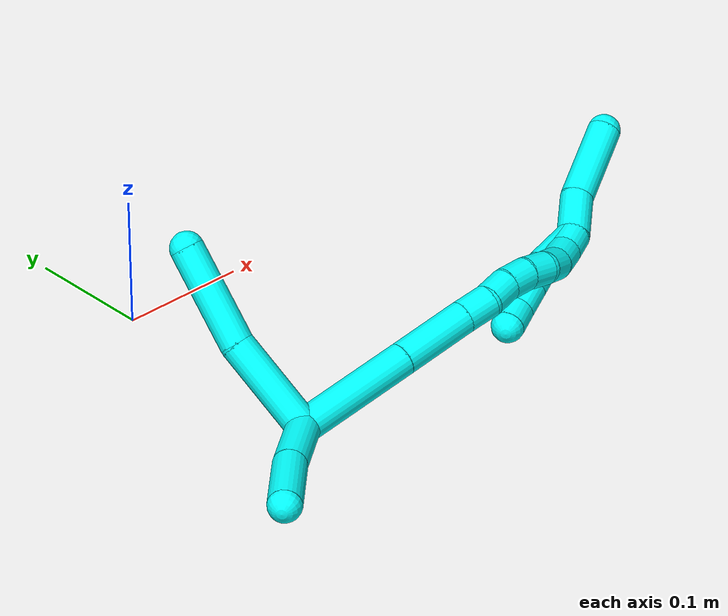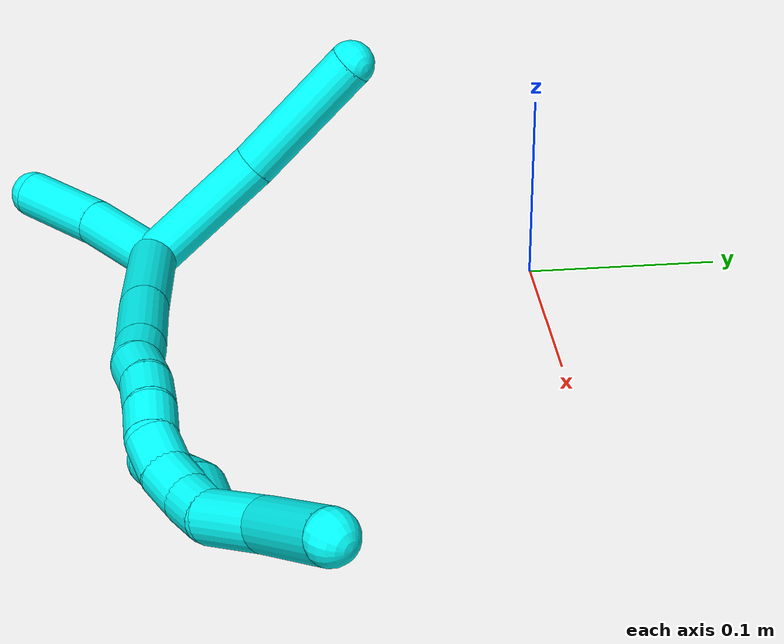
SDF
<sdf version="1.7">
 <world name="default">
  <model name="photoneo_s_sensor">
   <static>1</static>
   <pose>0 0 2 1.57079 1.57079 3.14159</pose>
   <link name="link">
    <inertial><mass>0.1</mass></inertial>
    <sensor name="sensor" type="depth">
     <update_rate>30</update_rate>
     <camera>
      <horizontal_fov>1.22</horizontal_fov>
      <image><width>1920</width><height>1200</height><format>B8G8R8</format></image>
      <clip><near>0.1</near><far>4</far></clip>
      <depth_camera><output>points</output></depth_camera>
     </camera>
     <plugin name="camera_plugin" filename="libgazebo_ros_depth_camera.so">
      <baseline>0.2</baseline>
      <alwaysOn>1</alwaysOn>
      <updateRate>0.0</updateRate>
      <cameraName>camera_ir</cameraName>
      <imageTopicName>/camera/color/image_raw</imageTopicName>
      <cameraInfoTopicName>/camera/color/camera_info</cameraInfoTopicName>
      <depthImageTopicName>/camera/depth/image_raw</depthImageTopicName>
      <depthImageCameraInfoTopicName>/camera/depth/camera_info</depthImageCameraInfoTopicName>
      <pointCloudTopicName>/camera/depth/points</pointCloudTopicName>
      <frameName>fr_optical</frameName>
      <pointCloudCutoff>0.1</pointCloudCutoff>
      <pointCloudCutoffMax>2.0</pointCloudCutoffMax>
      <distortionK1>0</distortionK1>
      <distortionK2>0</distortionK2>
      <distortionK3>0</distortionK3>
      <distortionT1>0</distortionT1>
      <distortionT2>0</distortionT2>
      <CxPrime>0</CxPrime>
      <Cx>0</Cx>
      <Cy>0</Cy>
      <focalLength>0</focalLength>
      <hackBaseline>0</hackBaseline>
     </plugin>
    </sensor>
   </link>
  </model>
  <model name="bin">
   <static>1</static>
   <link name="bottom">
    <collision name="collision-bottom">
     <pose>0 0 -0.01 0 -0 0</pose>
     <geometry><box><size>0.8 0.6 0.02</size></box></geometry>
     <surface>
      <friction><ode><mu>100</mu><mu2>100</mu2></ode></friction>
      <contact><collide_bitmask>65535</collide_bitmask></contact>
     </surface>
    </collision>
   </link>
   <link name="west_wall">
    <collision name="collision-west_wall">
     <pose>-0.41 0 0.1 0 -0 0</pose>
     <geometry><box><size>0.02 0.6 0.2</size></box></geometry>
     <surface>
      <friction><ode><mu>100</mu><mu2>100</mu2></ode></friction>
      <contact><collide_bitmask>65535</collide_bitmask></contact>
     </surface>
    </collision>
   </link>
   <link name="east_wall">
    <collision name="collision-east_wall">
     <pose>0.41 0 0.1 0 -0 0</pose>
     <geometry><box><size>0.02 0.6 0.2</size></box></geometry>
     <surface>
      <friction><ode><mu>100</mu><mu2>100</mu2></ode></friction>
      <contact><collide_bitmask>65535</collide_bitmask></contact>
     </surface>
    </collision>
   </link>
   <link name="south_wall">
    <collision name="collision-south_wall">
     <pose>0 -0.31 0.1 0 -0 0</pose>
     <geometry><box><size>0.8 0.02 0.2</size></box></geometry>
     <surface>
      <friction><ode><mu>100</mu><mu2>100</mu2></ode></friction>
      <contact><collide_bitmask>65535</collide_bitmask></contact>
     </surface>
    </collision>
   </link>
   <link name="north_wall">
    <collision name="collision-north_wall">
     <pose>0 0.31 0.1 0 -0 0</pose>
     <geometry><box><size>0.8 0.02 0.2</size></box></geometry>
     <surface>
      <friction><ode><mu>100</mu><mu2>100</mu2></ode></friction>
      <contact><collide_bitmask>65535</collide_bitmask></contact>
     </surface>
    </collision>
   </link>
  </model>
  <model name="3">
   <static>0</static>
   <link name="3">
    <collision name="collision-cylinder-e_1_2_8">
     <pose>-0.032833 0.011971 -0.012075 -2.36052 -1.09294 1.9516</pose>
     <geometry><cylinder><radius>0.0125</radius><length>0.073949</length></cylinder></geometry>
     <surface>
      <friction><ode><mu>1.16</mu><mu2>1.16</mu2><slip1>0</slip1><slip2>0</slip2></ode></friction>
      <contact><ode><kp>1e+06</kp><kd>1</kd><max_vel>0</max_vel><min_depth>0.001</min_depth></ode></contact>
     </surface>
    </collision>
    <visual name="visual-cylinder-e_1_2_8">
     <pose>-0.032833 0.011971 -0.012075 -2.36052 -1.09294 1.9516</pose>
     <geometry><cylinder><radius>0.0125</radius><length>0.073949</length></cylinder></geometry>
     <material><ambient>0.003922 1 0.996078 1</ambient></material>
    </visual>
    <collision name="collision-cylinder-e_2_8_6">
     <pose>-0.095449 0.042005 -0.039403 -2.27202 -0.899882 1.60997</pose>
     <geometry><cylinder><radius>0.0125</radius><length>0.076051</length></cylinder></geometry>
     <surface>
      <friction><ode><mu>1.16</mu><mu2>1.16</mu2><slip1>0</slip1><slip2>0</slip2></ode></friction>
      <contact><ode><kp>1e+06</kp><kd>1</kd><max_vel>0</max_vel><min_depth>0.001</min_depth></ode></contact>
     </surface>
    </collision>
    <visual name="visual-cylinder-e_2_8_6">
     <pose>-0.095449 0.042005 -0.039403 -2.27202 -0.899882 1.60997</pose>
     <geometry><cylinder><radius>0.0125</radius><length>0.076051</length></cylinder></geometry>
     <material><ambient>0.003922 1 0.996078 1</ambient></material>
    </visual>
    <collision name="collision-cylinder-e_1_2_9">
     <pose>-0.000627 -1.3e-05 0.024934 0.000512 -0.025158 -6e-06</pose>
     <geometry><cylinder><radius>0.0125</radius><length>0.049883</length></cylinder></geometry>
     <surface>
      <friction><ode><mu>1.16</mu><mu2>1.16</mu2><slip1>0</slip1><slip2>0</slip2></ode></friction>
      <contact><ode><kp>1e+06</kp><kd>1</kd><max_vel>0</max_vel><min_depth>0.001</min_depth></ode></contact>
     </surface>
    </collision>
    <visual name="visual-cylinder-e_1_2_9">
     <pose>-0.000627 -1.3e-05 0.024934 0.000512 -0.025158 -6e-06</pose>
     <geometry><cylinder><radius>0.0125</radius><length>0.049883</length></cylinder></geometry>
     <material><ambient>0.003922 1 0.996078 1</ambient></material>
    </visual>
    <collision name="collision-cylinder-e_2_9_5">
     <pose>0.001045 0.000739 0.074808 -0.030654 0.091894 -0.00141</pose>
     <geometry><cylinder><radius>0.0125</radius><length>0.050117</length></cylinder></geometry>
     <surface>
      <friction><ode><mu>1.16</mu><mu2>1.16</mu2><slip1>0</slip1><slip2>0</slip2></ode></friction>
      <contact><ode><kp>1e+06</kp><kd>1</kd><max_vel>0</max_vel><min_depth>0.001</min_depth></ode></contact>
     </surface>
    </collision>
    <visual name="visual-cylinder-e_2_9_5">
     <pose>0.001045 0.000739 0.074808 -0.030654 0.091894 -0.00141</pose>
     <geometry><cylinder><radius>0.0125</radius><length>0.050117</length></cylinder></geometry>
     <material><ambient>0.003922 1 0.996078 1</ambient></material>
    </visual>
    <collision name="collision-cylinder-e_1_2_10">
     <pose>0.023335 0.021348 -0.033172 -2.56976 0.534187 -1.49916</pose>
     <geometry><cylinder><radius>0.0125</radius><length>0.091666</length></cylinder></geometry>
     <surface>
      <friction><ode><mu>1.16</mu><mu2>1.16</mu2><slip1>0</slip1><slip2>0</slip2></ode></friction>
      <contact><ode><kp>1e+06</kp><kd>1</kd><max_vel>0</max_vel><min_depth>0.001</min_depth></ode></contact>
     </surface>
    </collision>
    <visual name="visual-cylinder-e_1_2_10">
     <pose>0.023335 0.021348 -0.033172 -2.56976 0.534187 -1.49916</pose>
     <geometry><cylinder><radius>0.0125</radius><length>0.091666</length></cylinder></geometry>
     <material><ambient>0.003922 1 0.996078 1</ambient></material>
    </visual>
    <collision name="collision-cylinder-e_2_10_11">
     <pose>0.061356 0.055634 -0.088078 -2.60465 0.526031 -1.54927</pose>
     <geometry><cylinder><radius>0.0125</radius><length>0.058495</length></cylinder></geometry>
     <surface>
      <friction><ode><mu>1.16</mu><mu2>1.16</mu2><slip1>0</slip1><slip2>0</slip2></ode></friction>
      <contact><ode><kp>1e+06</kp><kd>1</kd><max_vel>0</max_vel><min_depth>0.001</min_depth></ode></contact>
     </surface>
    </collision>
    <visual name="visual-cylinder-e_2_10_11">
     <pose>0.061356 0.055634 -0.088078 -2.60465 0.526031 -1.54927</pose>
     <geometry><cylinder><radius>0.0125</radius><length>0.058495</length></cylinder></geometry>
     <material><ambient>0.003922 1 0.996078 1</ambient></material>
    </visual>
    <collision name="collision-cylinder-e_3_11_12">
     <pose>0.082526 0.074082 -0.118631 -2.58311 0.557591 -1.56911</pose>
     <geometry><cylinder><radius>0.0125</radius><length>0.02451</length></cylinder></geometry>
     <surface>
      <friction><ode><mu>1.16</mu><mu2>1.16</mu2><slip1>0</slip1><slip2>0</slip2></ode></friction>
      <contact><ode><kp>1e+06</kp><kd>1</kd><max_vel>0</max_vel><min_depth>0.001</min_depth></ode></contact>
     </surface>
    </collision>
    <visual name="visual-cylinder-e_3_11_12">
     <pose>0.082526 0.074082 -0.118631 -2.58311 0.557591 -1.56911</pose>
     <geometry><cylinder><radius>0.0125</radius><length>0.02451</length></cylinder></geometry>
     <material><ambient>0.003922 1 0.996078 1</ambient></material>
    </visual>
    <collision name="collision-cylinder-e_4_12_13">
     <pose>0.093054 0.083027 -0.137146 -2.80116 0.374526 -1.66815</pose>
     <geometry><cylinder><radius>0.0125</radius><length>0.022106</length></cylinder></geometry>
     <surface>
      <friction><ode><mu>1.16</mu><mu2>1.16</mu2><slip1>0</slip1><slip2>0</slip2></ode></friction>
      <contact><ode><kp>1e+06</kp><kd>1</kd><max_vel>0</max_vel><min_depth>0.001</min_depth></ode></contact>
     </surface>
    </collision>
    <visual name="visual-cylinder-e_4_12_13">
     <pose>0.093054 0.083027 -0.137146 -2.80116 0.374526 -1.66815</pose>
     <geometry><cylinder><radius>0.0125</radius><length>0.022106</length></cylinder></geometry>
     <material><ambient>0.003922 1 0.996078 1</ambient></material>
    </visual>
    <collision name="collision-cylinder-e_5_13_14">
     <pose>0.10281 0.088907 -0.155749 -2.87364 0.553944 -2.25612</pose>
     <geometry><cylinder><radius>0.0125</radius><length>0.02172</length></cylinder></geometry>
     <surface>
      <friction><ode><mu>1.16</mu><mu2>1.16</mu2><slip1>0</slip1><slip2>0</slip2></ode></friction>
      <contact><ode><kp>1e+06</kp><kd>1</kd><max_vel>0</max_vel><min_depth>0.001</min_depth></ode></contact>
     </surface>
    </collision>
    <visual name="visual-cylinder-e_5_13_14">
     <pose>0.10281 0.088907 -0.155749 -2.87364 0.553944 -2.25612</pose>
     <geometry><cylinder><radius>0.0125</radius><length>0.02172</length></cylinder></geometry>
     <material><ambient>0.003922 1 0.996078 1</ambient></material>
    </visual>
    <collision name="collision-cylinder-e_6_14_15">
     <pose>0.114716 0.092304 -0.172631 -3.02282 0.65672 -2.79604</pose>
     <geometry><cylinder><radius>0.0125</radius><length>0.020286</length></cylinder></geometry>
     <surface>
      <friction><ode><mu>1.16</mu><mu2>1.16</mu2><slip1>0</slip1><slip2>0</slip2></ode></friction>
      <contact><ode><kp>1e+06</kp><kd>1</kd><max_vel>0</max_vel><min_depth>0.001</min_depth></ode></contact>
     </surface>
    </collision>
    <visual name="visual-cylinder-e_6_14_15">
     <pose>0.114716 0.092304 -0.172631 -3.02282 0.65672 -2.79604</pose>
     <geometry><cylinder><radius>0.0125</radius><length>0.020286</length></cylinder></geometry>
     <material><ambient>0.003922 1 0.996078 1</ambient></material>
    </visual>
    <collision name="collision-cylinder-e_7_15_16">
     <pose>0.125047 0.091749 -0.189626 2.97604 0.425094 2.40753</pose>
     <geometry><cylinder><radius>0.0125</radius><length>0.020073</length></cylinder></geometry>
     <surface>
      <friction><ode><mu>1.16</mu><mu2>1.16</mu2><slip1>0</slip1><slip2>0</slip2></ode></friction>
      <contact><ode><kp>1e+06</kp><kd>1</kd><max_vel>0</max_vel><min_depth>0.001</min_depth></ode></contact>
     </surface>
    </collision>
    <visual name="visual-cylinder-e_7_15_16">
     <pose>0.125047 0.091749 -0.189626 2.97604 0.425094 2.40753</pose>
     <geometry><cylinder><radius>0.0125</radius><length>0.020073</length></cylinder></geometry>
     <material><ambient>0.003922 1 0.996078 1</ambient></material>
    </visual>
    <collision name="collision-cylinder-e_8_16_17">
     <pose>0.131303 0.090494 -0.208969 -3.11726 0.202118 -2.90274</pose>
     <geometry><cylinder><radius>0.0125</radius><length>0.021085</length></cylinder></geometry>
     <surface>
      <friction><ode><mu>1.16</mu><mu2>1.16</mu2><slip1>0</slip1><slip2>0</slip2></ode></friction>
      <contact><ode><kp>1e+06</kp><kd>1</kd><max_vel>0</max_vel><min_depth>0.001</min_depth></ode></contact>
     </surface>
    </collision>
    <visual name="visual-cylinder-e_8_16_17">
     <pose>0.131303 0.090494 -0.208969 -3.11726 0.202118 -2.90274</pose>
     <geometry><cylinder><radius>0.0125</radius><length>0.021085</length></cylinder></geometry>
     <material><ambient>0.003922 1 0.996078 1</ambient></material>
    </visual>
    <collision name="collision-cylinder-e_9_17_1">
     <pose>0.135008 0.092956 -0.228947 -2.91639 0.159146 -1.22839</pose>
     <geometry><cylinder><radius>0.0125</radius><length>0.020061</length></cylinder></geometry>
     <surface>
      <friction><ode><mu>1.16</mu><mu2>1.16</mu2><slip1>0</slip1><slip2>0</slip2></ode></friction>
      <contact><ode><kp>1e+06</kp><kd>1</kd><max_vel>0</max_vel><min_depth>0.001</min_depth></ode></contact>
     </surface>
    </collision>
    <visual name="visual-cylinder-e_9_17_1">
     <pose>0.135008 0.092956 -0.228947 -2.91639 0.159146 -1.22839</pose>
     <geometry><cylinder><radius>0.0125</radius><length>0.020061</length></cylinder></geometry>
     <material><ambient>0.003922 1 0.996078 1</ambient></material>
    </visual>
    <collision name="collision-cylinder-e_1_1_18">
     <pose>0.133302 0.101014 -0.255774 -2.81349 -0.179722 0.996923</pose>
     <geometry><cylinder><radius>0.0125</radius><length>0.036876</length></cylinder></geometry>
     <surface>
      <friction><ode><mu>1.16</mu><mu2>1.16</mu2><slip1>0</slip1><slip2>0</slip2></ode></friction>
      <contact><ode><kp>1e+06</kp><kd>1</kd><max_vel>0</max_vel><min_depth>0.001</min_depth></ode></contact>
     </surface>
    </collision>
    <visual name="visual-cylinder-e_1_1_18">
     <pose>0.133302 0.101014 -0.255774 -2.81349 -0.179722 0.996923</pose>
     <geometry><cylinder><radius>0.0125</radius><length>0.036876</length></cylinder></geometry>
     <material><ambient>0.003922 1 0.996078 1</ambient></material>
    </visual>
    <collision name="collision-cylinder-e_2_18_4">
     <pose>0.130702 0.123104 -0.299999 -2.6008 0.022048 -0.079505</pose>
     <geometry><cylinder><radius>0.0125</radius><length>0.063124</length></cylinder></geometry>
     <surface>
      <friction><ode><mu>1.16</mu><mu2>1.16</mu2><slip1>0</slip1><slip2>0</slip2></ode></friction>
      <contact><ode><kp>1e+06</kp><kd>1</kd><max_vel>0</max_vel><min_depth>0.001</min_depth></ode></contact>
     </surface>
    </collision>
    <visual name="visual-cylinder-e_2_18_4">
     <pose>0.130702 0.123104 -0.299999 -2.6008 0.022048 -0.079505</pose>
     <geometry><cylinder><radius>0.0125</radius><length>0.063124</length></cylinder></geometry>
     <material><ambient>0.003922 1 0.996078 1</ambient></material>
    </visual>
    <collision name="collision-cylinder-e_1_1_19">
     <pose>0.129591 0.08677 -0.223406 0.504915 -0.383618 -0.100107</pose>
     <geometry><cylinder><radius>0.0125</radius><length>0.037442</length></cylinder></geometry>
     <surface>
      <friction><ode><mu>1.16</mu><mu2>1.16</mu2><slip1>0</slip1><slip2>0</slip2></ode></friction>
      <contact><ode><kp>1e+06</kp><kd>1</kd><max_vel>0</max_vel><min_depth>0.001</min_depth></ode></contact>
     </surface>
    </collision>
    <visual name="visual-cylinder-e_1_1_19">
     <pose>0.129591 0.08677 -0.223406 0.504915 -0.383618 -0.100107</pose>
     <geometry><cylinder><radius>0.0125</radius><length>0.037442</length></cylinder></geometry>
     <material><ambient>0.003922 1 0.996078 1</ambient></material>
    </visual>
    <collision name="collision-cylinder-e_2_19_20">
     <pose>0.121169 0.073079 -0.199639 0.553124 -0.139541 -0.039666</pose>
     <geometry><cylinder><radius>0.0125</radius><length>0.020349</length></cylinder></geometry>
     <surface>
      <friction><ode><mu>1.16</mu><mu2>1.16</mu2><slip1>0</slip1><slip2>0</slip2></ode></friction>
      <contact><ode><kp>1e+06</kp><kd>1</kd><max_vel>0</max_vel><min_depth>0.001</min_depth></ode></contact>
     </surface>
    </collision>
    <visual name="visual-cylinder-e_2_19_20">
     <pose>0.121169 0.073079 -0.199639 0.553124 -0.139541 -0.039666</pose>
     <geometry><cylinder><radius>0.0125</radius><length>0.020349</length></cylinder></geometry>
     <material><ambient>0.003922 1 0.996078 1</ambient></material>
    </visual>
    <collision name="collision-cylinder-e_3_20_21">
     <pose>0.118298 0.062234 -0.182024 0.550623 -0.136406 -0.038588</pose>
     <geometry><cylinder><radius>0.0125</radius><length>0.021419</length></cylinder></geometry>
     <surface>
      <friction><ode><mu>1.16</mu><mu2>1.16</mu2><slip1>0</slip1><slip2>0</slip2></ode></friction>
      <contact><ode><kp>1e+06</kp><kd>1</kd><max_vel>0</max_vel><min_depth>0.001</min_depth></ode></contact>
     </surface>
    </collision>
    <visual name="visual-cylinder-e_3_20_21">
     <pose>0.118298 0.062234 -0.182024 0.550623 -0.136406 -0.038588</pose>
     <geometry><cylinder><radius>0.0125</radius><length>0.021419</length></cylinder></geometry>
     <material><ambient>0.003922 1 0.996078 1</ambient></material>
    </visual>
    <collision name="collision-cylinder-e_4_21_3">
     <pose>0.115376 0.054428 -0.162941 0.220905 -0.14143 -0.015711</pose>
     <geometry><cylinder><radius>0.0125</radius><length>0.02079</length></cylinder></geometry>
     <surface>
      <friction><ode><mu>1.16</mu><mu2>1.16</mu2><slip1>0</slip1><slip2>0</slip2></ode></friction>
      <contact><ode><kp>1e+06</kp><kd>1</kd><max_vel>0</max_vel><min_depth>0.001</min_depth></ode></contact>
     </surface>
    </collision>
    <visual name="visual-cylinder-e_4_21_3">
     <pose>0.115376 0.054428 -0.162941 0.220905 -0.14143 -0.015711</pose>
     <geometry><cylinder><radius>0.0125</radius><length>0.02079</length></cylinder></geometry>
     <material><ambient>0.003922 1 0.996078 1</ambient></material>
    </visual>
    <collision name="collision-sphere-3">
     <pose>0.113911 0.052173 -0.1529 0 -0 0</pose>
     <geometry><sphere><radius>0.0125</radius></sphere></geometry>
     <surface>
      <friction><ode><mu>1.16</mu><mu2>1.16</mu2><slip1>0</slip1><slip2>0</slip2></ode></friction>
      <contact><ode><kp>1e+06</kp><kd>1</kd><max_vel>0</max_vel><min_depth>0.001</min_depth></ode></contact>
     </surface>
    </collision>
    <visual name="visual-sphere-3">
     <pose>0.113911 0.052173 -0.1529 0 -0 0</pose>
     <geometry><sphere><radius>0.0125</radius></sphere></geometry>
     <material><ambient>0.003922 1 0.996078 1</ambient></material>
    </visual>
    <collision name="collision-sphere-21">
     <pose>0.116841 0.056683 -0.172982 0 -0 0</pose>
     <geometry><sphere><radius>0.0125</radius></sphere></geometry>
     <surface>
      <friction><ode><mu>1.16</mu><mu2>1.16</mu2><slip1>0</slip1><slip2>0</slip2></ode></friction>
      <contact><ode><kp>1e+06</kp><kd>1</kd><max_vel>0</max_vel><min_depth>0.001</min_depth></ode></contact>
     </surface>
    </collision>
    <visual name="visual-sphere-21">
     <pose>0.116841 0.056683 -0.172982 0 -0 0</pose>
     <geometry><sphere><radius>0.0125</radius></sphere></geometry>
     <material><ambient>0.003922 1 0.996078 1</ambient></material>
    </visual>
    <collision name="collision-sphere-20">
     <pose>0.119754 0.067786 -0.191066 0 -0 0</pose>
     <geometry><sphere><radius>0.0125</radius></sphere></geometry>
     <surface>
      <friction><ode><mu>1.16</mu><mu2>1.16</mu2><slip1>0</slip1><slip2>0</slip2></ode></friction>
      <contact><ode><kp>1e+06</kp><kd>1</kd><max_vel>0</max_vel><min_depth>0.001</min_depth></ode></contact>
     </surface>
    </collision>
    <visual name="visual-sphere-20">
     <pose>0.119754 0.067786 -0.191066 0 -0 0</pose>
     <geometry><sphere><radius>0.0125</radius></sphere></geometry>
     <material><ambient>0.003922 1 0.996078 1</ambient></material>
    </visual>
    <collision name="collision-sphere-19">
     <pose>0.122584 0.078372 -0.208212 0 -0 0</pose>
     <geometry><sphere><radius>0.0125</radius></sphere></geometry>
     <surface>
      <friction><ode><mu>1.16</mu><mu2>1.16</mu2><slip1>0</slip1><slip2>0</slip2></ode></friction>
      <contact><ode><kp>1e+06</kp><kd>1</kd><max_vel>0</max_vel><min_depth>0.001</min_depth></ode></contact>
     </surface>
    </collision>
    <visual name="visual-sphere-19">
     <pose>0.122584 0.078372 -0.208212 0 -0 0</pose>
     <geometry><sphere><radius>0.0125</radius></sphere></geometry>
     <material><ambient>0.003922 1 0.996078 1</ambient></material>
    </visual>
    <collision name="collision-sphere-10">
     <pose>0.046671 0.042696 -0.066344 0 -0 0</pose>
     <geometry><sphere><radius>0.0125</radius></sphere></geometry>
     <surface>
      <friction><ode><mu>1.16</mu><mu2>1.16</mu2><slip1>0</slip1><slip2>0</slip2></ode></friction>
      <contact><ode><kp>1e+06</kp><kd>1</kd><max_vel>0</max_vel><min_depth>0.001</min_depth></ode></contact>
     </surface>
    </collision>
    <visual name="visual-sphere-10">
     <pose>0.046671 0.042696 -0.066344 0 -0 0</pose>
     <geometry><sphere><radius>0.0125</radius></sphere></geometry>
     <material><ambient>0.003922 1 0.996078 1</ambient></material>
    </visual>
    <collision name="collision-sphere-5">
     <pose>0.003344 0.001504 0.099749 0 -0 0</pose>
     <geometry><sphere><radius>0.0125</radius></sphere></geometry>
     <surface>
      <friction><ode><mu>1.16</mu><mu2>1.16</mu2><slip1>0</slip1><slip2>0</slip2></ode></friction>
      <contact><ode><kp>1e+06</kp><kd>1</kd><max_vel>0</max_vel><min_depth>0.001</min_depth></ode></contact>
     </surface>
    </collision>
    <visual name="visual-sphere-5">
     <pose>0.003344 0.001504 0.099749 0 -0 0</pose>
     <geometry><sphere><radius>0.0125</radius></sphere></geometry>
     <material><ambient>0.003922 1 0.996078 1</ambient></material>
    </visual>
    <collision name="collision-sphere-6">
     <pose>-0.125233 0.060068 -0.054654 0 -0 0</pose>
     <geometry><sphere><radius>0.0125</radius></sphere></geometry>
     <surface>
      <friction><ode><mu>1.16</mu><mu2>1.16</mu2><slip1>0</slip1><slip2>0</slip2></ode></friction>
      <contact><ode><kp>1e+06</kp><kd>1</kd><max_vel>0</max_vel><min_depth>0.001</min_depth></ode></contact>
     </surface>
    </collision>
    <visual name="visual-sphere-6">
     <pose>-0.125233 0.060068 -0.054654 0 -0 0</pose>
     <geometry><sphere><radius>0.0125</radius></sphere></geometry>
     <material><ambient>0.003922 1 0.996078 1</ambient></material>
    </visual>
    <collision name="collision-sphere-9">
     <pose>-0.001255 -2.6e-05 0.049868 0 -0 0</pose>
     <geometry><sphere><radius>0.0125</radius></sphere></geometry>
     <surface>
      <friction><ode><mu>1.16</mu><mu2>1.16</mu2><slip1>0</slip1><slip2>0</slip2></ode></friction>
      <contact><ode><kp>1e+06</kp><kd>1</kd><max_vel>0</max_vel><min_depth>0.001</min_depth></ode></contact>
     </surface>
    </collision>
    <visual name="visual-sphere-9">
     <pose>-0.001255 -2.6e-05 0.049868 0 -0 0</pose>
     <geometry><sphere><radius>0.0125</radius></sphere></geometry>
     <material><ambient>0.003922 1 0.996078 1</ambient></material>
    </visual>
    <collision name="collision-sphere-2">
     <geometry><sphere><radius>0.0125</radius></sphere></geometry>
     <surface>
      <friction><ode><mu>1.16</mu><mu2>1.16</mu2><slip1>0</slip1><slip2>0</slip2></ode></friction>
      <contact><ode><kp>1e+06</kp><kd>1</kd><max_vel>0</max_vel><min_depth>0.001</min_depth></ode></contact>
     </surface>
    </collision>
    <visual name="visual-sphere-2">
     <geometry><sphere><radius>0.0125</radius></sphere></geometry>
     <material><ambient>0.003922 1 0.996078 1</ambient></material>
    </visual>
    <collision name="collision-sphere-8">
     <pose>-0.065665 0.023942 -0.024151 0 -0 0</pose>
     <geometry><sphere><radius>0.0125</radius></sphere></geometry>
     <surface>
      <friction><ode><mu>1.16</mu><mu2>1.16</mu2><slip1>0</slip1><slip2>0</slip2></ode></friction>
      <contact><ode><kp>1e+06</kp><kd>1</kd><max_vel>0</max_vel><min_depth>0.001</min_depth></ode></contact>
     </surface>
    </collision>
    <visual name="visual-sphere-8">
     <pose>-0.065665 0.023942 -0.024151 0 -0 0</pose>
     <geometry><sphere><radius>0.0125</radius></sphere></geometry>
     <material><ambient>0.003922 1 0.996078 1</ambient></material>
    </visual>
    <collision name="collision-sphere-11">
     <pose>0.076041 0.068572 -0.109812 0 -0 0</pose>
     <geometry><sphere><radius>0.0125</radius></sphere></geometry>
     <surface>
      <friction><ode><mu>1.16</mu><mu2>1.16</mu2><slip1>0</slip1><slip2>0</slip2></ode></friction>
      <contact><ode><kp>1e+06</kp><kd>1</kd><max_vel>0</max_vel><min_depth>0.001</min_depth></ode></contact>
     </surface>
    </collision>
    <visual name="visual-sphere-11">
     <pose>0.076041 0.068572 -0.109812 0 -0 0</pose>
     <geometry><sphere><radius>0.0125</radius></sphere></geometry>
     <material><ambient>0.003922 1 0.996078 1</ambient></material>
    </visual>
    <collision name="collision-sphere-12">
     <pose>0.089011 0.079592 -0.12745 0 -0 0</pose>
     <geometry><sphere><radius>0.0125</radius></sphere></geometry>
     <surface>
      <friction><ode><mu>1.16</mu><mu2>1.16</mu2><slip1>0</slip1><slip2>0</slip2></ode></friction>
      <contact><ode><kp>1e+06</kp><kd>1</kd><max_vel>0</max_vel><min_depth>0.001</min_depth></ode></contact>
     </surface>
    </collision>
    <visual name="visual-sphere-12">
     <pose>0.089011 0.079592 -0.12745 0 -0 0</pose>
     <geometry><sphere><radius>0.0125</radius></sphere></geometry>
     <material><ambient>0.003922 1 0.996078 1</ambient></material>
    </visual>
    <collision name="collision-sphere-13">
     <pose>0.097098 0.086462 -0.146842 0 -0 0</pose>
     <geometry><sphere><radius>0.0125</radius></sphere></geometry>
     <surface>
      <friction><ode><mu>1.16</mu><mu2>1.16</mu2><slip1>0</slip1><slip2>0</slip2></ode></friction>
      <contact><ode><kp>1e+06</kp><kd>1</kd><max_vel>0</max_vel><min_depth>0.001</min_depth></ode></contact>
     </surface>
    </collision>
    <visual name="visual-sphere-13">
     <pose>0.097098 0.086462 -0.146842 0 -0 0</pose>
     <geometry><sphere><radius>0.0125</radius></sphere></geometry>
     <material><ambient>0.003922 1 0.996078 1</ambient></material>
    </visual>
    <collision name="collision-sphere-14">
     <pose>0.108523 0.091352 -0.164655 0 -0 0</pose>
     <geometry><sphere><radius>0.0125</radius></sphere></geometry>
     <surface>
      <friction><ode><mu>1.16</mu><mu2>1.16</mu2><slip1>0</slip1><slip2>0</slip2></ode></friction>
      <contact><ode><kp>1e+06</kp><kd>1</kd><max_vel>0</max_vel><min_depth>0.001</min_depth></ode></contact>
     </surface>
    </collision>
    <visual name="visual-sphere-14">
     <pose>0.108523 0.091352 -0.164655 0 -0 0</pose>
     <geometry><sphere><radius>0.0125</radius></sphere></geometry>
     <material><ambient>0.003922 1 0.996078 1</ambient></material>
    </visual>
    <collision name="collision-sphere-15">
     <pose>0.120908 0.093256 -0.180608 0 -0 0</pose>
     <geometry><sphere><radius>0.0125</radius></sphere></geometry>
     <surface>
      <friction><ode><mu>1.16</mu><mu2>1.16</mu2><slip1>0</slip1><slip2>0</slip2></ode></friction>
      <contact><ode><kp>1e+06</kp><kd>1</kd><max_vel>0</max_vel><min_depth>0.001</min_depth></ode></contact>
     </surface>
    </collision>
    <visual name="visual-sphere-15">
     <pose>0.120908 0.093256 -0.180608 0 -0 0</pose>
     <geometry><sphere><radius>0.0125</radius></sphere></geometry>
     <material><ambient>0.003922 1 0.996078 1</ambient></material>
    </visual>
    <collision name="collision-sphere-16">
     <pose>0.129186 0.090242 -0.198644 0 -0 0</pose>
     <geometry><sphere><radius>0.0125</radius></sphere></geometry>
     <surface>
      <friction><ode><mu>1.16</mu><mu2>1.16</mu2><slip1>0</slip1><slip2>0</slip2></ode></friction>
      <contact><ode><kp>1e+06</kp><kd>1</kd><max_vel>0</max_vel><min_depth>0.001</min_depth></ode></contact>
     </surface>
    </collision>
    <visual name="visual-sphere-16">
     <pose>0.129186 0.090242 -0.198644 0 -0 0</pose>
     <geometry><sphere><radius>0.0125</radius></sphere></geometry>
     <material><ambient>0.003922 1 0.996078 1</ambient></material>
    </visual>
    <collision name="collision-sphere-17">
     <pose>0.133419 0.090745 -0.219294 0 -0 0</pose>
     <geometry><sphere><radius>0.0125</radius></sphere></geometry>
     <surface>
      <friction><ode><mu>1.16</mu><mu2>1.16</mu2><slip1>0</slip1><slip2>0</slip2></ode></friction>
      <contact><ode><kp>1e+06</kp><kd>1</kd><max_vel>0</max_vel><min_depth>0.001</min_depth></ode></contact>
     </surface>
    </collision>
    <visual name="visual-sphere-17">
     <pose>0.133419 0.090745 -0.219294 0 -0 0</pose>
     <geometry><sphere><radius>0.0125</radius></sphere></geometry>
     <material><ambient>0.003922 1 0.996078 1</ambient></material>
    </visual>
    <collision name="collision-sphere-1">
     <pose>0.136598 0.095168 -0.2386 0 -0 0</pose>
     <geometry><sphere><radius>0.0125</radius></sphere></geometry>
     <surface>
      <friction><ode><mu>1.16</mu><mu2>1.16</mu2><slip1>0</slip1><slip2>0</slip2></ode></friction>
      <contact><ode><kp>1e+06</kp><kd>1</kd><max_vel>0</max_vel><min_depth>0.001</min_depth></ode></contact>
     </surface>
    </collision>
    <visual name="visual-sphere-1">
     <pose>0.136598 0.095168 -0.2386 0 -0 0</pose>
     <geometry><sphere><radius>0.0125</radius></sphere></geometry>
     <material><ambient>0.003922 1 0.996078 1</ambient></material>
    </visual>
    <collision name="collision-sphere-18">
     <pose>0.130006 0.10686 -0.272947 0 -0 0</pose>
     <geometry><sphere><radius>0.0125</radius></sphere></geometry>
     <surface>
      <friction><ode><mu>1.16</mu><mu2>1.16</mu2><slip1>0</slip1><slip2>0</slip2></ode></friction>
      <contact><ode><kp>1e+06</kp><kd>1</kd><max_vel>0</max_vel><min_depth>0.001</min_depth></ode></contact>
     </surface>
    </collision>
    <visual name="visual-sphere-18">
     <pose>0.130006 0.10686 -0.272947 0 -0 0</pose>
     <geometry><sphere><radius>0.0125</radius></sphere></geometry>
     <material><ambient>0.003922 1 0.996078 1</ambient></material>
    </visual>
    <collision name="collision-sphere-4">
     <pose>0.131398 0.139349 -0.32705 0 -0 0</pose>
     <geometry><sphere><radius>0.0125</radius></sphere></geometry>
     <surface>
      <friction><ode><mu>1.16</mu><mu2>1.16</mu2><slip1>0</slip1><slip2>0</slip2></ode></friction>
      <contact><ode><kp>1e+06</kp><kd>1</kd><max_vel>0</max_vel><min_depth>0.001</min_depth></ode></contact>
     </surface>
    </collision>
    <visual name="visual-sphere-4">
     <pose>0.131398 0.139349 -0.32705 0 -0 0</pose>
     <geometry><sphere><radius>0.0125</radius></sphere></geometry>
     <material><ambient>0.003922 1 0.996078 1</ambient></material>
    </visual>
    <inertial>
     <pose>0.050807 0.05479 -0.107735 0 -0 0</pose>
     <mass>0.75</mass>
     <inertia><ixx>1.5e-05</ixx><ixy>0</ixy><ixz>0</ixz><iyy>6.6e-05</iyy><iyz>0</iyz><izz>-8.1e-05</izz></inertia>
    </inertial>
   </link>
   <pose>-0.015837 -0.201303 0.011501 1.54478 0.400238 -0.924025</pose>
  </model>
 </world>
</sdf>
